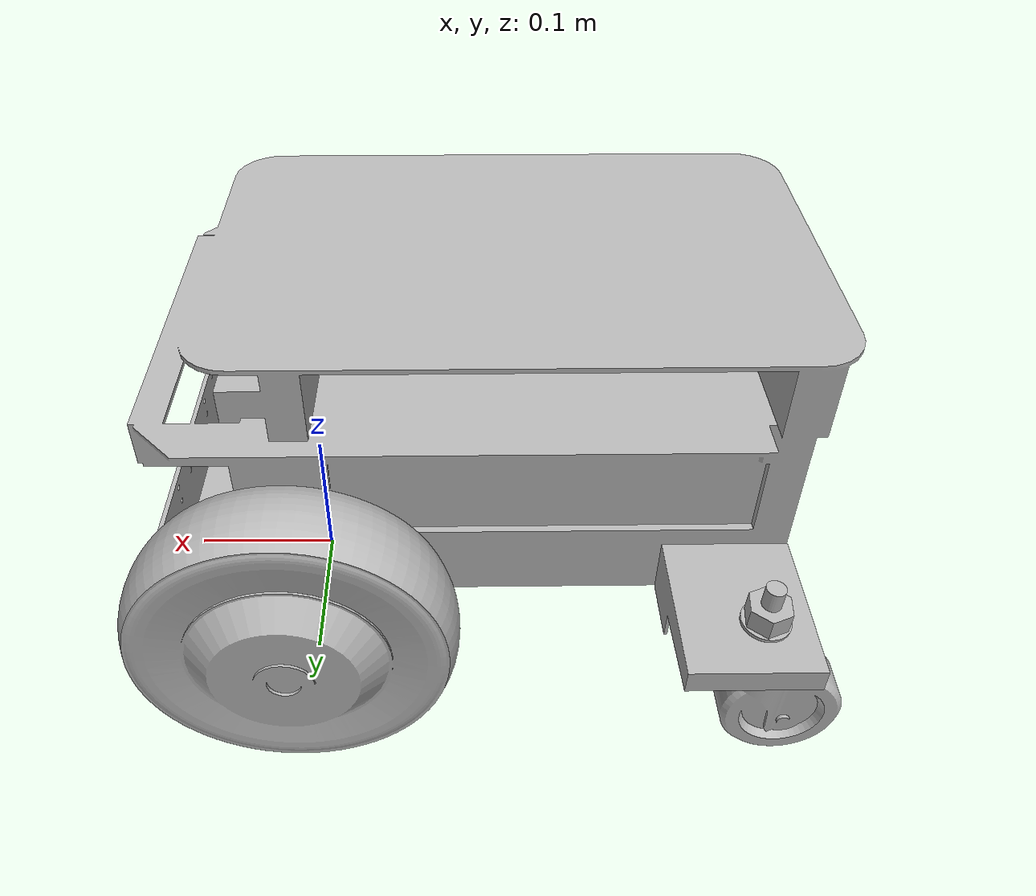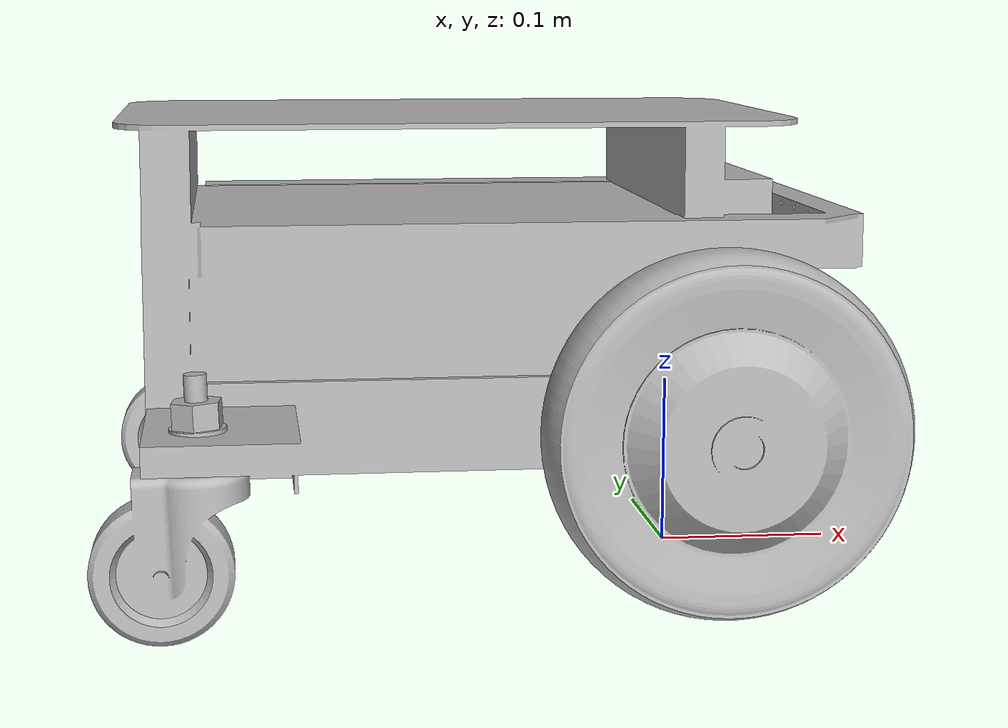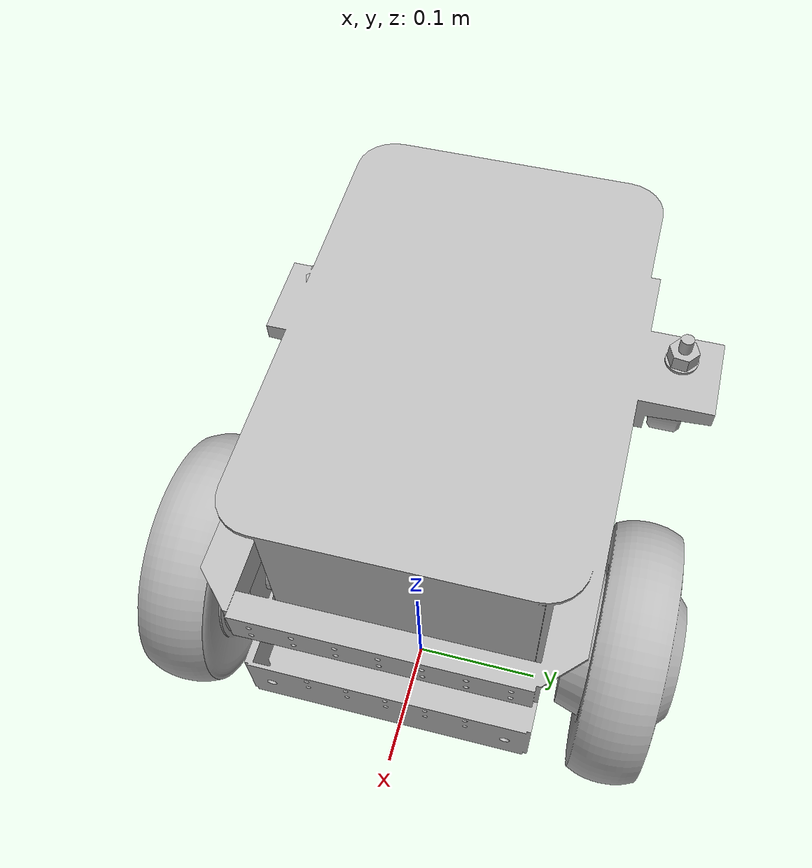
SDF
<?xml version="1.0"?>

<sdf version='1.6'>
  <model name='TinyRobot'>
    <plugin name="slotcar" filename="libslotcar.so">

      <nominal_drive_speed>0.5</nominal_drive_speed>
      <nominal_drive_acceleration>0.25</nominal_drive_acceleration>
      <max_drive_acceleration>0.75</max_drive_acceleration>

      <nominal_turn_speed>0.6</nominal_turn_speed>
      <nominal_turn_acceleration>1.5</nominal_turn_acceleration>
      <max_turn_acceleration>2.0</max_turn_acceleration>

      <tire_radius>0.1</tire_radius>
      <base_width>0.3206</base_width>

      <stop_distance>0.75</stop_distance>
      <stop_radius>0.75</stop_radius>

      <!-- Can the robot drive backwards -->
      <reversible>true</reversible>

      <!-- Battery params -->
      <nominal_voltage>12.0</nominal_voltage>
      <nominal_capacity>24.0</nominal_capacity>
      <charging_current>5.0</charging_current>

      <!-- Physical params -->
      <mass>20.0</mass>
      <inertia>10.0</inertia>
      <friction_coefficient>0.22</friction_coefficient>

      <!-- Power systems -->
      <nominal_power>20.0</nominal_power>

    </plugin>

    <link name='base_footprint'>
      <pose frame=''>0 0 0 0 -0 0</pose>
      <inertial>
        <pose frame=''>-0.15 0 0.13 0 -0 0</pose>
        <mass>7</mass> <!-- A higher mass causes wheels to spin while attempting to turn when using DART -->
        <inertia>
          <ixx>0.0594508</ixx>
          <ixy>0</ixy>
          <ixz>-2.77556e-17</ixz>
          <iyy>0.150753</iyy>
          <iyz>0</iyz>
          <izz>0.172704</izz>
        </inertia>
      </inertial>
      <collision name='base_footprint_fixed_joint_lump__base_link_collision'>
        <pose frame=''>-0.11 0 0.151 0 -0 0</pose>
        <geometry>
          <box>
            <size>0.398 0.268 0.16</size>
          </box>
        </geometry>
      </collision>
      <collision name='base_footprint_fixed_joint_lump__base_link_collision_1'>
        <pose frame=''>-0.136 0 0.248 0 -0 0</pose>
        <geometry>
          <box>
            <size>0.375 0.268 0.034</size>
          </box>
        </geometry>
      </collision>
      <collision name='base_footprint_fixed_joint_lump__base_link_collision_2'>
        <pose frame=''>-0.279 0.169 0.106 0 -0 0</pose>
        <geometry>
          <box>
            <size>0.1 0.07 0.07</size>
          </box>
        </geometry>
      </collision>
      <collision name='base_footprint_fixed_joint_lump__base_link_collision_3'>
        <pose frame=''>-0.279 -0.169 0.106 0 -0 0</pose>
        <geometry>
          <box>
            <size>0.1 0.07 0.07</size>
          </box>
        </geometry>
      </collision>
      <collision name='base_footprint_fixed_joint_lump__left_caster_wheel_collision_4'>
        <pose frame=''>-0.3 0.169 0.04 0 -0 0</pose>
        <geometry>
          <sphere>
            <radius>0.04</radius>
          </sphere>
        </geometry>
        <surface>
          <contact>
            <ode>
              <kp>1e+08</kp>
              <min_depth>0.005</min_depth>
            </ode>
          </contact>
          <friction>
            <ode>
              <mu>0</mu>
              <mu2>0</mu2>
            </ode>
          </friction>
        </surface>
      </collision>
      <collision name='base_footprint_fixed_joint_lump__raspicam_collision_5'>
        <pose frame=''>0.05 0.085 0.245 0 -1.15192 3.1415</pose>
        <geometry>
          <box>
            <size>0.03 0.026 0.016</size>
          </box>
        </geometry>
      </collision>
      <collision name='base_footprint_fixed_joint_lump__right_caster_wheel_collision_6'>
        <pose frame=''>-0.3 -0.169 0.04 0 -0 0</pose>
        <geometry>
          <sphere>
            <radius>0.04</radius>
          </sphere>
        </geometry>
        <surface>
          <contact>
            <ode>
              <kp>1e+08</kp>
              <min_depth>0.005</min_depth>
            </ode>
          </contact>
          <friction>
            <ode>
              <mu>0</mu>
              <mu2>0</mu2>
            </ode>
          </friction>
        </surface>
      </collision>
      <collision name='base_footprint_fixed_joint_lump__sonar_0_collision_7'>
        <pose frame=''>0.01 -0.14 0.25 0 0 -1.5708</pose>
        <geometry>
          <box>
            <size>0.02 0.044 0.021</size>
          </box>
        </geometry>
        <surface>
          <contact>
            <ode/>
          </contact>
          <friction>
            <ode/>
          </friction>
        </surface>
      </collision>
      <collision name='base_footprint_fixed_joint_lump__sonar_1_collision_8'>
        <pose frame=''>0.08 -0.07 0.25 0 -0 0.785</pose>
        <geometry>
          <box>
            <size>0.02 0.044 0.021</size>
          </box>
        </geometry>
        <surface>
          <contact>
            <ode/>
          </contact>
          <friction>
            <ode/>
          </friction>
        </surface>
      </collision>
      <collision name='base_footprint_fixed_joint_lump__sonar_2_collision_9'>
        <pose frame=''>0.08 -0.01 0.25 0 0 -0.785</pose>
        <geometry>
          <box>
            <size>0.02 0.044 0.021</size>
          </box>
        </geometry>
        <surface>
          <contact>
            <ode/>
          </contact>
          <friction>
            <ode/>
          </friction>
        </surface>
      </collision>
      <collision name='base_footprint_fixed_joint_lump__sonar_3_collision_10'>
        <pose frame=''>0.08 0.04 0.25 0 -0 0</pose>
        <geometry>
          <box>
            <size>0.02 0.044 0.021</size>
          </box>
        </geometry>
        <surface>
          <contact>
            <ode/>
          </contact>
          <friction>
            <ode/>
          </friction>
        </surface>
      </collision>
      <collision name='base_footprint_fixed_joint_lump__sonar_4_collision_11'>
        <pose frame=''>0.01 0.14 0.25 0 -0 1.5708</pose>
        <geometry>
          <box>
            <size>0.02 0.044 0.021</size>
          </box>
        </geometry>
        <surface>
          <contact>
            <ode/>
          </contact>
          <friction>
            <ode/>
          </friction>
        </surface>
      </collision>
      <visual name='base_footprint_fixed_joint_lump__base_link_visual'>
        <pose frame=''>-0.11 0 0.071 0 -0 0</pose>
        <geometry>
          <mesh>
            <scale>1 1 1</scale>
            <uri>model://TinyRobot/meshes/tinyRobot_body.obj</uri>
          </mesh>
        </geometry>
      </visual>
      <visual name='base_footprint_fixed_joint_lump__base_link_visual_1'>
        <pose frame=''>-0.279 0.17 0.09 0 -0 -3.14159</pose>
        <geometry>
          <mesh>
            <scale>1 1 1</scale>
            <uri>model://TinyRobot/meshes/caster_wheel.obj</uri>
          </mesh>
        </geometry>
      </visual>
      <visual name='base_footprint_fixed_joint_lump__base_link_visual_2'>
        <pose frame=''>-0.279 -0.17 0.09 0 -0 -3.14159</pose>
        <geometry>
          <mesh>
            <scale>1 1 1</scale>
            <uri>model://TinyRobot/meshes/caster_wheel.obj</uri>
          </mesh>
        </geometry>
      </visual>
      <velocity_decay/>
      <velocity_decay/>
      <velocity_decay/>
      <velocity_decay/>
    </link>
    <link name='left_wheel'>
      <pose frame=''>0 0.163 0.1 0 -0 1.5708</pose>
      <inertial>
        <pose frame=''>0 0 0 3.14159 1.57079 3.14159</pose>
        <mass>3.34</mass>
        <inertia>
          <ixx>0.00904583</ixx>
          <ixy>0</ixy>
          <ixz>0</ixz>
          <iyy>0.00904583</iyy>
          <iyz>0</iyz>
          <izz>0.0167</izz>
        </inertia>
      </inertial>
      <collision name='left_wheel_collision'>
        <pose frame=''>0 0 0 3.14159 1.57079 3.14159</pose>
        <geometry>
          <sphere>
            <radius>0.1</radius>
          </sphere>
        </geometry>
        <surface>
          <contact>
            <ode>
              <kp>10000000.0</kp>
              <kd>1.0</kd>
            </ode>
          </contact>
          <friction>
            <ode>
              <mu>1</mu>
              <mu2>1</mu2>
              <fdir1>0 0 1</fdir1>
            </ode>
          </friction>
        </surface>
      </collision>
      <visual name='left_wheel_visual'>
        <pose frame=''>-0.071 0 0 0 -0 0</pose>
        <geometry>
          <mesh>
            <scale>1 1 1</scale>
            <uri>model://TinyRobot/meshes/front_wheel.obj</uri>
          </mesh>
        </geometry>
      </visual>
      <gravity>1</gravity>
      <velocity_decay/>
    </link>
    <joint name='joint_tire_left' type='revolute'>
      <child>left_wheel</child>
      <parent>base_footprint</parent>
      <axis>
        <xyz>0 1 0</xyz>
        <limit>
          <lower>-1e+16</lower>
          <upper>1e+16</upper>
        </limit>
        <dynamics>
          <spring_reference>0</spring_reference>
          <spring_stiffness>0</spring_stiffness>
        </dynamics>
        <use_parent_model_frame>1</use_parent_model_frame>
      </axis>
    </joint>
    <link name='right_wheel'>
      <pose frame=''>0 -0.163 0.1 0 -0 1.5708</pose>
      <inertial>
        <pose frame=''>0 0 0 3.14159 1.57079 3.14159</pose>
        <mass>3.34</mass>
        <inertia>
          <ixx>0.00904583</ixx>
          <ixy>0</ixy>
          <ixz>0</ixz>
          <iyy>0.00904583</iyy>
          <iyz>0</iyz>
          <izz>0.0167</izz>
        </inertia>
      </inertial>
      <collision name='right_wheel_collision'>
        <pose frame=''>0 0 0 3.14159 1.57079 3.14159</pose>
        <geometry>
          <sphere>
            <radius>0.1</radius>
          </sphere>
        </geometry>
        <surface>
          <contact>
            <ode>
              <kp>10000000.0</kp>
              <kd>1.0</kd>
            </ode>
          </contact>
          <friction>
            <ode>
              <mu>1</mu>
              <mu2>1</mu2>
              <fdir1>0 0 1</fdir1>
            </ode>
          </friction>
        </surface>
      </collision>
      <visual name='right_wheel_visual'>
        <pose frame=''>0.071 0 0 -3.14159 0 -3.14159</pose>
        <geometry>
          <mesh>
            <scale>1 1 1</scale>
            <uri>model://TinyRobot/meshes/front_wheel.obj</uri>
          </mesh>
        </geometry>
      </visual>
      <gravity>1</gravity>
      <velocity_decay/>
    </link>
    <joint name='joint_tire_right' type='revolute'>
      <child>right_wheel</child>
      <parent>base_footprint</parent>
      <axis>
        <xyz>0 1 0</xyz>
        <limit>
          <lower>-1e+16</lower>
          <upper>1e+16</upper>
        </limit>
        <dynamics>
          <spring_reference>0</spring_reference>
          <spring_stiffness>0</spring_stiffness>
        </dynamics>
        <use_parent_model_frame>1</use_parent_model_frame>
      </axis>
    </joint>
    <static>0</static>

  </model>
</sdf>
